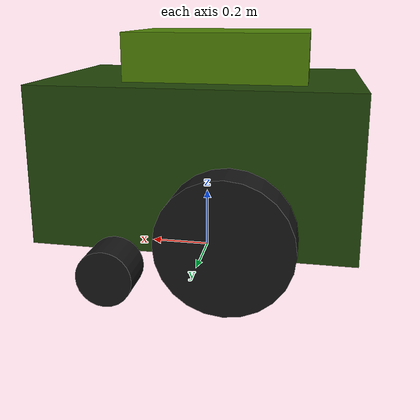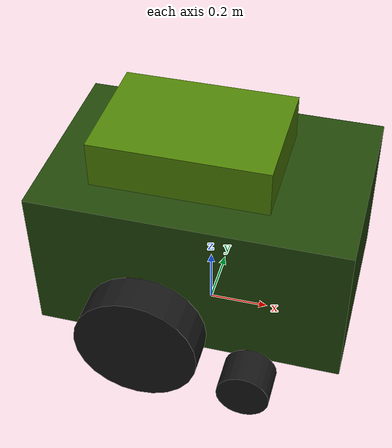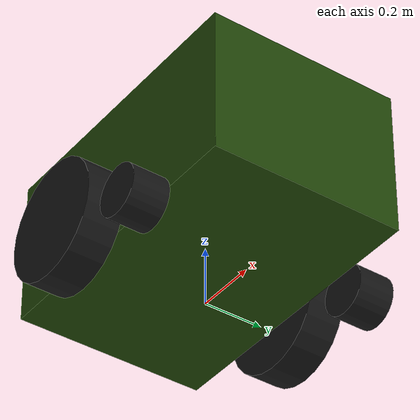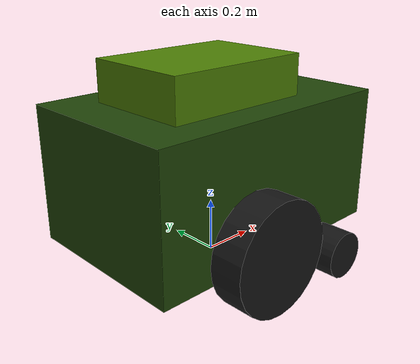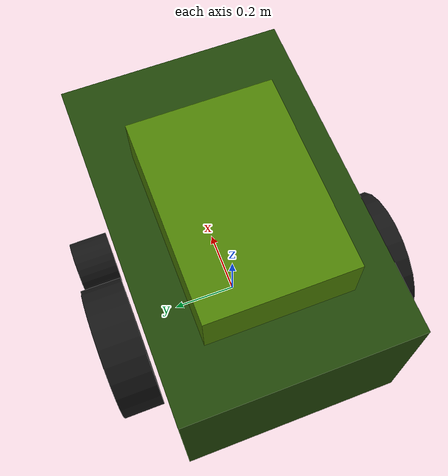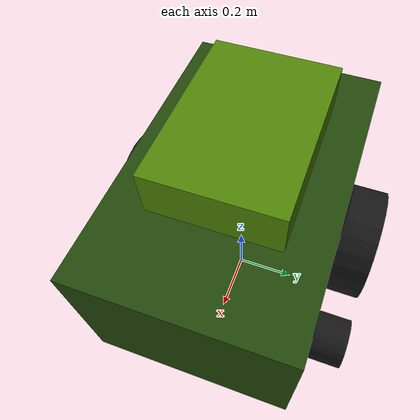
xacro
<?xml version="1.0"?>
<robot name="dcvg_robot" xmlns:xacro="http://www.ros.org/wiki/xacro">

  <xacro:arg name="use_imu_tilt" default="false"/>

  <xacro:property name="base_height" value="0.08"/>
  <xacro:property name="wheel_x" value="-0.12705949983365117"/>
  <xacro:property name="wheel_z" value="0.10252579476793128"/>
  <xacro:property name="caster_x" value="0.22"/>
  <xacro:property name="caster_z" value="-0.015"/>
  <xacro:property name="right_y" value="-0.4009616629101749"/>
  <xacro:property name="left_y" value="0.4"/>

  <material name="dark"><color rgba="0.084 0.084 0.084 1"/></material>
  <material name="green"><color rgba="0.127 0.270 0.033 1"/></material>
  <material name="light_green"><color rgba="0.305 0.503 0.020 1"/></material>

  <xacro:macro name="wheel" params="name x y z radius">
    <joint name="base_link_to_${name}" type="fixed">
      <parent link="base_link"/>
      <child link="${name}"/>
      <origin xyz="${x} ${y} ${z}" rpy="${-pi/2} 0 0"/>
    </joint>
    <link name="${name}">
      <visual>
        <geometry><cylinder radius="${radius}" length="0.122"/></geometry>
        <material name="dark"/>
      </visual>
    </link>
  </xacro:macro>

  <xacro:macro name="frame" params="name x y z">
    <joint name="${name}_joint" type="fixed">
      <parent link="base_link"/>
      <child link="${name}"/>
      <origin xyz="${x} ${y} ${z}" rpy="0 0 0"/>
    </joint>
    <link name="${name}"/>
  </xacro:macro>

  <link name="base_footprint"/>

  <xacro:if value="$(arg use_imu_tilt)">
    <link name="base_pitch_link"/>

    <joint name="base_pitch_joint" type="continuous">
      <parent link="base_footprint"/>
      <child link="base_pitch_link"/>
      <origin xyz="0 0 ${base_height}" rpy="0 0 0"/>
      <axis xyz="0 1 0"/>
    </joint>

    <joint name="base_roll_joint" type="continuous">
      <parent link="base_pitch_link"/>
      <child link="base_link"/>
      <origin xyz="0 0 0" rpy="0 0 0"/>
      <axis xyz="1 0 0"/>
    </joint>
  </xacro:if>

  <xacro:unless value="$(arg use_imu_tilt)">
    <joint name="base_joint" type="fixed">
      <parent link="base_footprint"/>
      <child link="base_link"/>
      <origin xyz="0 0 ${base_height}" rpy="0 0 0"/>
    </joint>
  </xacro:unless>

  <link name="base_link">
    <visual>
      <origin xyz="0 0 0.2715" rpy="0 0 0"/>
      <geometry><box size="1.0 0.65 0.5"/></geometry>
      <material name="green"/>
    </visual>
  </link>

  <link name="circuit_box">
    <visual>
      <geometry><box size="0.566 0.4 0.204"/></geometry>
      <material name="light_green"/>
    </visual>
  </link>
  <joint name="base_link_to_circuit_box" type="fixed">
    <parent link="base_link"/>
    <child link="circuit_box"/>
    <origin xyz="-0.051186530340802394 0 0.5696926006648109" rpy="0 0 0"/>
  </joint>

  <xacro:wheel name="right_wheel" x="${wheel_x}" y="${right_y}" z="${wheel_z}" radius="0.2"/>
  <xacro:wheel name="left_wheel" x="${wheel_x}" y="${left_y}" z="${wheel_z}" radius="0.2"/>
  <xacro:wheel name="right_caster_front" x="${caster_x}" y="${right_y}" z="${caster_z}" radius="0.085"/>
  <xacro:wheel name="left_caster_front" x="${caster_x}" y="${left_y}" z="${caster_z}" radius="0.085"/>

  <xacro:frame name="camera_link" x="0.62" y="0" z="0.82"/>
  <xacro:frame name="gps_link" x="-0.62" y="0.0" z="1.15"/>
  <xacro:frame name="gps_heading_link" x="0.62" y="0.0" z="1.15"/>

</robot>
